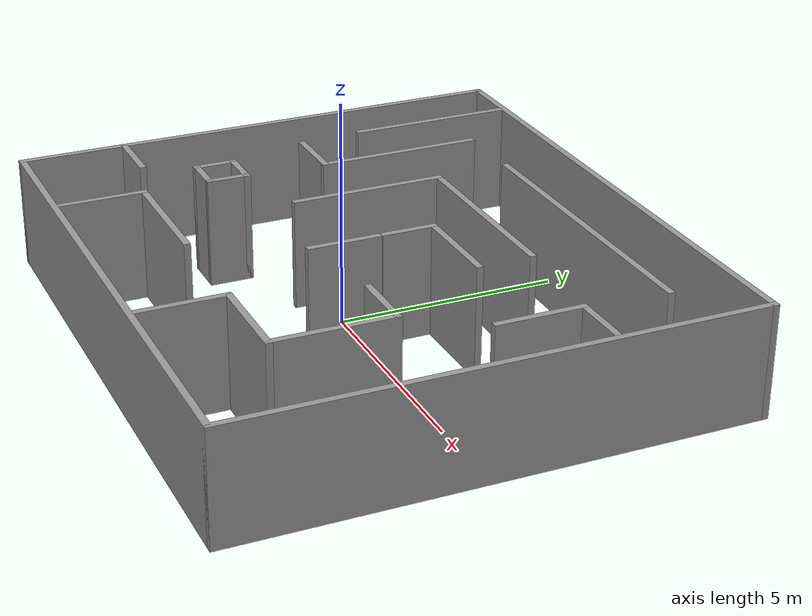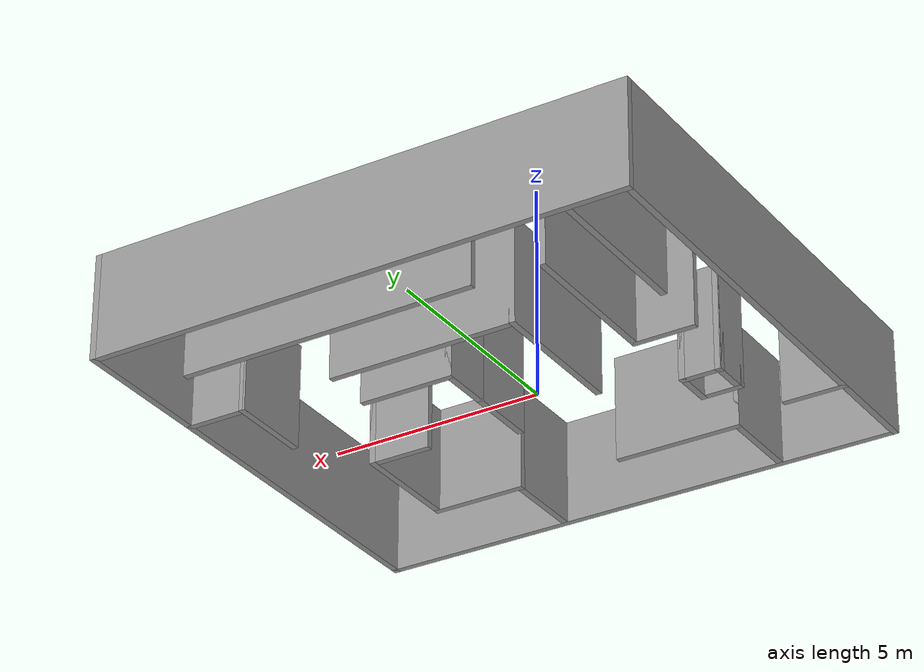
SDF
<?xml version='1.0'?>
<sdf version='1.7'>
  <model name='labyrinth_world'>
    <pose>0.695771 0.303349 0 0 -0 0</pose>
    <link name='Wall_49'>
      <collision name='Wall_49_Collision'>
        <geometry>
          <box>
            <size>11.5 0.15 2.5</size>
          </box>
        </geometry>
        <pose>0 0 1.25 0 -0 0</pose>
      </collision>
      <visual name='Wall_49_Visual'>
        <pose>0 0 1.25 0 -0 0</pose>
        <geometry>
          <box>
            <size>11.5 0.15 2.5</size>
          </box>
        </geometry>
        <material>
          <script>
            <uri>file://media/materials/scripts/gazebo.material</uri>
            <name>Gazebo/Grey</name>
          </script>
          <ambient>1 1 1 1</ambient>
        </material>
        <meta>
          <layer>0</layer>
        </meta>
      </visual>
      <pose>-6.3 -0 0 0 -0 -1.5708</pose>
    </link>
    <link name='Wall_51'>
      <collision name='Wall_51_Collision'>
        <geometry>
          <box>
            <size>12.75 0.15 2.5</size>
          </box>
        </geometry>
        <pose>0 0 1.25 0 -0 0</pose>
      </collision>
      <visual name='Wall_51_Visual'>
        <pose>0 0 1.25 0 -0 0</pose>
        <geometry>
          <box>
            <size>12.75 0.15 2.5</size>
          </box>
        </geometry>
        <material>
          <script>
            <uri>file://media/materials/scripts/gazebo.material</uri>
            <name>Gazebo/Grey</name>
          </script>
          <ambient>1 1 1 1</ambient>
        </material>
        <meta>
          <layer>0</layer>
        </meta>
      </visual>
      <pose>0 -5.675 0 0 -0 0</pose>
    </link>
    <link name='Wall_52'>
      <collision name='Wall_52_Collision'>
        <geometry>
          <box>
            <size>11.5 0.15 2.5</size>
          </box>
        </geometry>
        <pose>0 0 1.25 0 -0 0</pose>
      </collision>
      <visual name='Wall_52_Visual'>
        <pose>0 0 1.25 0 -0 0</pose>
        <geometry>
          <box>
            <size>11.5 0.15 2.5</size>
          </box>
        </geometry>
        <material>
          <script>
            <uri>file://media/materials/scripts/gazebo.material</uri>
            <name>Gazebo/Grey</name>
          </script>
          <ambient>1 1 1 1</ambient>
        </material>
        <meta>
          <layer>0</layer>
        </meta>
      </visual>
      <pose>6.3 -0 0 0 -0 1.5708</pose>
    </link>
    <link name='Wall_53'>
      <collision name='Wall_53_Collision'>
        <geometry>
          <box>
            <size>12.75 0.15 2.5</size>
          </box>
        </geometry>
        <pose>0 0 1.25 0 -0 0</pose>
      </collision>
      <visual name='Wall_53_Visual'>
        <pose>0 0 1.25 0 -0 0</pose>
        <geometry>
          <box>
            <size>12.75 0.15 2.5</size>
          </box>
        </geometry>
        <material>
          <script>
            <uri>file://media/materials/scripts/gazebo.material</uri>
            <name>Gazebo/Grey</name>
          </script>
          <ambient>1 1 1 1</ambient>
        </material>
        <meta>
          <layer>0</layer>
        </meta>
      </visual>
      <pose>0 5.675 0 0 -0 3.14159</pose>
    </link>
    <link name='Wall_55'>
      <collision name='Wall_55_Collision'>
        <geometry>
          <box>
            <size>2 0.15 2.5</size>
          </box>
        </geometry>
        <pose>0 0 1.25 0 -0 0</pose>
      </collision>
      <visual name='Wall_55_Visual'>
        <pose>0 0 1.25 0 -0 0</pose>
        <geometry>
          <box>
            <size>2 0.15 2.5</size>
          </box>
        </geometry>
        <material>
          <script>
            <uri>file://media/materials/scripts/gazebo.material</uri>
            <name>Gazebo/Grey</name>
          </script>
          <ambient>1 1 1 1</ambient>
        </material>
        <meta>
          <layer>0</layer>
        </meta>
      </visual>
      <pose>-3.59077 -4.62137 0 0 -0 1.5708</pose>
    </link>
    <link name='Wall_56'>
      <collision name='Wall_56_Collision'>
        <geometry>
          <box>
            <size>3 0.15 2.5</size>
          </box>
        </geometry>
        <pose>0 0 1.25 0 -0 0</pose>
      </collision>
      <visual name='Wall_56_Visual'>
        <pose>0 0 1.25 0 -0 0</pose>
        <geometry>
          <box>
            <size>3 0.15 2.5</size>
          </box>
        </geometry>
        <material>
          <script>
            <uri>file://media/materials/scripts/gazebo.material</uri>
            <name>Gazebo/Grey</name>
          </script>
          <ambient>1 1 1 1</ambient>
        </material>
        <meta>
          <layer>0</layer>
        </meta>
      </visual>
      <pose>-2.16577 -3.69637 0 0 -0 0</pose>
    </link>
    <link name='Wall_58'>
      <collision name='Wall_58_Collision'>
        <geometry>
          <box>
            <size>3.5 0.15 2.5</size>
          </box>
        </geometry>
        <pose>0 0 1.25 0 -0 0</pose>
      </collision>
      <visual name='Wall_58_Visual'>
        <pose>0 0 1.25 0 -0 0</pose>
        <geometry>
          <box>
            <size>3.5 0.15 2.5</size>
          </box>
        </geometry>
        <material>
          <script>
            <uri>file://media/materials/scripts/gazebo.material</uri>
            <name>Gazebo/Grey</name>
          </script>
          <ambient>1 1 1 1</ambient>
        </material>
        <meta>
          <layer>0</layer>
        </meta>
      </visual>
      <pose>-1.79789 0.790107 0 0 -0 1.5708</pose>
    </link>
    <link name='Wall_59'>
      <collision name='Wall_59_Collision'>
        <geometry>
          <box>
            <size>4.5 0.15 2.5</size>
          </box>
        </geometry>
        <pose>0 0 1.25 0 -0 0</pose>
      </collision>
      <visual name='Wall_59_Visual'>
        <pose>0 0 1.25 0 -0 0</pose>
        <geometry>
          <box>
            <size>4.5 0.15 2.5</size>
          </box>
        </geometry>
        <material>
          <script>
            <uri>file://media/materials/scripts/gazebo.material</uri>
            <name>Gazebo/Grey</name>
          </script>
          <ambient>1 1 1 1</ambient>
        </material>
        <meta>
          <layer>0</layer>
        </meta>
      </visual>
      <pose>0.377109 2.46511 0 0 -0 0</pose>
    </link>
    <link name='Wall_61'>
      <collision name='Wall_61_Collision'>
        <geometry>
          <box>
            <size>1.64142 0.15 2.5</size>
          </box>
        </geometry>
        <pose>0 0 1.25 0 -0 0</pose>
      </collision>
      <visual name='Wall_61_Visual'>
        <pose>0 0 1.25 0 -0 0</pose>
        <geometry>
          <box>
            <size>1.64142 0.15 2.5</size>
          </box>
        </geometry>
        <material>
          <script>
            <uri>file://media/materials/scripts/gazebo.material</uri>
            <name>Gazebo/Grey</name>
          </script>
          <ambient>1 1 1 1</ambient>
        </material>
        <meta>
          <layer>0</layer>
        </meta>
      </visual>
      <pose>0.473085 -0.736805 0 0 -0 1.5708</pose>
    </link>
    <link name='Wall_62'>
      <collision name='Wall_62_Collision'>
        <geometry>
          <box>
            <size>1.25 0.15 2.5</size>
          </box>
        </geometry>
        <pose>0 0 1.25 0 -0 0</pose>
      </collision>
      <visual name='Wall_62_Visual'>
        <pose>0 0 1.25 0 -0 0</pose>
        <geometry>
          <box>
            <size>1.25 0.15 2.5</size>
          </box>
        </geometry>
        <material>
          <script>
            <uri>file://media/materials/scripts/gazebo.material</uri>
            <name>Gazebo/Grey</name>
          </script>
          <ambient>1 1 1 1</ambient>
        </material>
        <meta>
          <layer>0</layer>
        </meta>
      </visual>
      <pose>0.473085 0.718274 0 0 -0 1.5708</pose>
    </link>
    <link name='Wall_64'>
      <collision name='Wall_64_Collision'>
        <geometry>
          <box>
            <size>2.25 0.15 2.5</size>
          </box>
        </geometry>
        <pose>0 0 1.25 0 -0 0</pose>
      </collision>
      <visual name='Wall_64_Visual'>
        <pose>0 0 1.25 0 -0 0</pose>
        <geometry>
          <box>
            <size>2.25 0.15 2.5</size>
          </box>
        </geometry>
        <material>
          <script>
            <uri>file://media/materials/scripts/gazebo.material</uri>
            <name>Gazebo/Grey</name>
          </script>
          <ambient>1 1 1 1</ambient>
        </material>
        <meta>
          <layer>0</layer>
        </meta>
      </visual>
      <pose>1.52309 1.26827 0 0 -0 0</pose>
    </link>
    <link name='Wall_66'>
      <collision name='Wall_66_Collision'>
        <geometry>
          <box>
            <size>3.75 0.15 2.5</size>
          </box>
        </geometry>
        <pose>0 0 1.25 0 -0 0</pose>
      </collision>
      <visual name='Wall_66_Visual'>
        <pose>0 0 1.25 0 -0 0</pose>
        <geometry>
          <box>
            <size>3.75 0.15 2.5</size>
          </box>
        </geometry>
        <material>
          <script>
            <uri>file://media/materials/scripts/gazebo.material</uri>
            <name>Gazebo/Grey</name>
          </script>
          <ambient>1 1 1 1</ambient>
        </material>
        <meta>
          <layer>0</layer>
        </meta>
      </visual>
      <pose>-4.94538 3.74387 0 0 -0 1.5708</pose>
    </link>
    <link name='Wall_68'>
      <collision name='Wall_68_Collision'>
        <geometry>
          <box>
            <size>1.5 0.15 2.5</size>
          </box>
        </geometry>
        <pose>0 0 1.25 0 -0 0</pose>
      </collision>
      <visual name='Wall_68_Visual'>
        <pose>0 0 1.25 0 -0 0</pose>
        <geometry>
          <box>
            <size>1.5 0.15 2.5</size>
          </box>
        </geometry>
        <material>
          <script>
            <uri>file://media/materials/scripts/gazebo.material</uri>
            <name>Gazebo/Grey</name>
          </script>
          <ambient>1 1 1 1</ambient>
        </material>
        <meta>
          <layer>0</layer>
        </meta>
      </visual>
      <pose>3.21985 -1.0841 0 0 -0 0</pose>
    </link>
    <link name='Wall_69'>
      <collision name='Wall_69_Collision'>
        <geometry>
          <box>
            <size>2.75 0.15 2.5</size>
          </box>
        </geometry>
        <pose>0 0 1.25 0 -0 0</pose>
      </collision>
      <visual name='Wall_69_Visual'>
        <pose>0 0 1.25 0 -0 0</pose>
        <geometry>
          <box>
            <size>2.75 0.15 2.5</size>
          </box>
        </geometry>
        <material>
          <script>
            <uri>file://media/materials/scripts/gazebo.material</uri>
            <name>Gazebo/Grey</name>
          </script>
          <ambient>1 1 1 1</ambient>
        </material>
        <meta>
          <layer>0</layer>
        </meta>
      </visual>
      <pose>3.89485 -2.3841 0 0 -0 -1.5708</pose>
    </link>
    <link name='Wall_70'>
      <collision name='Wall_70_Collision'>
        <geometry>
          <box>
            <size>2.25 0.15 2.5</size>
          </box>
        </geometry>
        <pose>0 0 1.25 0 -0 0</pose>
      </collision>
      <visual name='Wall_70_Visual'>
        <pose>0 0 1.25 0 -0 0</pose>
        <geometry>
          <box>
            <size>2.25 0.15 2.5</size>
          </box>
        </geometry>
        <material>
          <script>
            <uri>file://media/materials/scripts/gazebo.material</uri>
            <name>Gazebo/Grey</name>
          </script>
          <ambient>1 1 1 1</ambient>
        </material>
        <meta>
          <layer>0</layer>
        </meta>
      </visual>
      <pose>2.84485 -3.6841 0 0 -0 3.14159</pose>
    </link>
    <link name='Wall_71'>
      <collision name='Wall_71_Collision'>
        <geometry>
          <box>
            <size>2 0.15 2.5</size>
          </box>
        </geometry>
        <pose>0 0 1.25 0 -0 0</pose>
      </collision>
      <visual name='Wall_71_Visual'>
        <pose>0 0 1.25 0 -0 0</pose>
        <geometry>
          <box>
            <size>2 0.15 2.5</size>
          </box>
        </geometry>
        <material>
          <script>
            <uri>file://media/materials/scripts/gazebo.material</uri>
            <name>Gazebo/Grey</name>
          </script>
          <ambient>1 1 1 1</ambient>
        </material>
        <meta>
          <layer>0</layer>
        </meta>
      </visual>
      <pose>1.79485 -4.6091 0 0 -0 -1.5708</pose>
    </link>
    <link name='Wall_73'>
      <collision name='Wall_73_Collision'>
        <geometry>
          <box>
            <size>1 0.15 2.5</size>
          </box>
        </geometry>
        <pose>0 0 1.25 0 -0 0</pose>
      </collision>
      <visual name='Wall_73_Visual'>
        <pose>0 0 1.25 0 -0 0</pose>
        <geometry>
          <box>
            <size>1 0.15 2.5</size>
          </box>
        </geometry>
        <material>
          <script>
            <uri>file://media/materials/scripts/gazebo.material</uri>
            <name>Gazebo/Grey</name>
          </script>
          <ambient>1 1 1 1</ambient>
        </material>
        <meta>
          <layer>0</layer>
        </meta>
      </visual>
      <pose>-4.42744 -1.78799 0 0 -0 -1.5708</pose>
    </link>
    <link name='Wall_74'>
      <collision name='Wall_74_Collision'>
        <geometry>
          <box>
            <size>1 0.15 2.5</size>
          </box>
        </geometry>
        <pose>0 0 1.25 0 -0 0</pose>
      </collision>
      <visual name='Wall_74_Visual'>
        <pose>0 0 1.25 0 -0 0</pose>
        <geometry>
          <box>
            <size>1 0.15 2.5</size>
          </box>
        </geometry>
        <material>
          <script>
            <uri>file://media/materials/scripts/gazebo.material</uri>
            <name>Gazebo/Grey</name>
          </script>
          <ambient>1 1 1 1</ambient>
        </material>
        <meta>
          <layer>0</layer>
        </meta>
      </visual>
      <pose>-4.00244 -2.21299 0 0 -0 0</pose>
    </link>
    <link name='Wall_75'>
      <collision name='Wall_75_Collision'>
        <geometry>
          <box>
            <size>1 0.15 2.5</size>
          </box>
        </geometry>
        <pose>0 0 1.25 0 -0 0</pose>
      </collision>
      <visual name='Wall_75_Visual'>
        <pose>0 0 1.25 0 -0 0</pose>
        <geometry>
          <box>
            <size>1 0.15 2.5</size>
          </box>
        </geometry>
        <material>
          <script>
            <uri>file://media/materials/scripts/gazebo.material</uri>
            <name>Gazebo/Grey</name>
          </script>
          <ambient>1 1 1 1</ambient>
        </material>
        <meta>
          <layer>0</layer>
        </meta>
      </visual>
      <pose>-3.57744 -1.78799 0 0 -0 1.5708</pose>
    </link>
    <link name='Wall_76'>
      <collision name='Wall_76_Collision'>
        <geometry>
          <box>
            <size>1 0.15 2.5</size>
          </box>
        </geometry>
        <pose>0 0 1.25 0 -0 0</pose>
      </collision>
      <visual name='Wall_76_Visual'>
        <pose>0 0 1.25 0 -0 0</pose>
        <geometry>
          <box>
            <size>1 0.15 2.5</size>
          </box>
        </geometry>
        <material>
          <script>
            <uri>file://media/materials/scripts/gazebo.material</uri>
            <name>Gazebo/Grey</name>
          </script>
          <ambient>1 1 1 1</ambient>
        </material>
        <meta>
          <layer>0</layer>
        </meta>
      </visual>
      <pose>-4.00244 -1.36299 0 0 -0 3.14159</pose>
    </link>
    <link name='Wall_78'>
      <collision name='Wall_78_Collision'>
        <geometry>
          <box>
            <size>7 0.15 2.5</size>
          </box>
        </geometry>
        <pose>0 0 1.25 0 -0 0</pose>
      </collision>
      <visual name='Wall_78_Visual'>
        <pose>0 0 1.25 0 -0 0</pose>
        <geometry>
          <box>
            <size>7 0.15 2.5</size>
          </box>
        </geometry>
        <material>
          <script>
            <uri>file://media/materials/scripts/gazebo.material</uri>
            <name>Gazebo/Grey</name>
          </script>
          <ambient>1 1 1 1</ambient>
        </material>
        <meta>
          <layer>0</layer>
        </meta>
      </visual>
      <pose>1.62711 4.13516 0 0 -0 0</pose>
    </link>
    <link name='Wall_80'>
      <collision name='Wall_80_Collision'>
        <geometry>
          <box>
            <size>1.5 0.15 2.5</size>
          </box>
        </geometry>
        <pose>0 0 1.25 0 -0 0</pose>
      </collision>
      <visual name='Wall_80_Visual'>
        <pose>0 0 1.25 0 -0 0</pose>
        <geometry>
          <box>
            <size>1.5 0.15 2.5</size>
          </box>
        </geometry>
        <material>
          <script>
            <uri>file://media/materials/scripts/gazebo.material</uri>
            <name>Gazebo/Grey</name>
          </script>
          <ambient>1 1 1 1</ambient>
        </material>
        <meta>
          <layer>0</layer>
        </meta>
      </visual>
      <pose>-4.15086 0.469724 0 0 -0 0</pose>
    </link>
    <link name='Wall_81'>
      <collision name='Wall_81_Collision'>
        <geometry>
          <box>
            <size>3.75 0.15 2.5</size>
          </box>
        </geometry>
        <pose>0 0 1.25 0 -0 0</pose>
      </collision>
      <visual name='Wall_81_Visual'>
        <pose>0 0 1.25 0 -0 0</pose>
        <geometry>
          <box>
            <size>3.75 0.15 2.5</size>
          </box>
        </geometry>
        <material>
          <script>
            <uri>file://media/materials/scripts/gazebo.material</uri>
            <name>Gazebo/Grey</name>
          </script>
          <ambient>1 1 1 1</ambient>
        </material>
        <meta>
          <layer>0</layer>
        </meta>
      </visual>
      <pose>-3.47586 2.26972 0 0 -0 1.5708</pose>
    </link>
    <link name='Wall_83'>
      <collision name='Wall_83_Collision'>
        <geometry>
          <box>
            <size>2 0.15 2.5</size>
          </box>
        </geometry>
        <pose>0 0 1.25 0 -0 0</pose>
      </collision>
      <visual name='Wall_83_Visual'>
        <pose>0 0 1.25 0 -0 0</pose>
        <geometry>
          <box>
            <size>2 0.15 2.5</size>
          </box>
        </geometry>
        <material>
          <script>
            <uri>file://media/materials/scripts/gazebo.material</uri>
            <name>Gazebo/Grey</name>
          </script>
          <ambient>1 1 1 1</ambient>
        </material>
        <meta>
          <layer>0</layer>
        </meta>
      </visual>
      <pose>4.93535 1.39472 0 0 -0 1.5708</pose>
    </link>
    <link name='Wall_84'>
      <collision name='Wall_84_Collision'>
        <geometry>
          <box>
            <size>1.5 0.15 2.5</size>
          </box>
        </geometry>
        <pose>0 0 1.25 0 -0 0</pose>
      </collision>
      <visual name='Wall_84_Visual'>
        <pose>0 0 1.25 0 -0 0</pose>
        <geometry>
          <box>
            <size>1.5 0.15 2.5</size>
          </box>
        </geometry>
        <material>
          <script>
            <uri>file://media/materials/scripts/gazebo.material</uri>
            <name>Gazebo/Grey</name>
          </script>
          <ambient>1 1 1 1</ambient>
        </material>
        <meta>
          <layer>0</layer>
        </meta>
      </visual>
      <pose>5.61035 2.31972 0 0 -0 0</pose>
    </link>
    <link name='Wall_86'>
      <collision name='Wall_86_Collision'>
        <geometry>
          <box>
            <size>1.5 0.15 2.5</size>
          </box>
        </geometry>
        <pose>0 0 1.25 0 -0 0</pose>
      </collision>
      <visual name='Wall_86_Visual'>
        <pose>0 0 1.25 0 -0 0</pose>
        <geometry>
          <box>
            <size>1.5 0.15 2.5</size>
          </box>
        </geometry>
        <material>
          <script>
            <uri>file://media/materials/scripts/gazebo.material</uri>
            <name>Gazebo/Grey</name>
          </script>
          <ambient>1 1 1 1</ambient>
        </material>
        <meta>
          <layer>0</layer>
        </meta>
      </visual>
      <pose>-5.625 -3.31523 0 0 -0 0</pose>
    </link>
    <static>1</static>
  </model>
</sdf>
